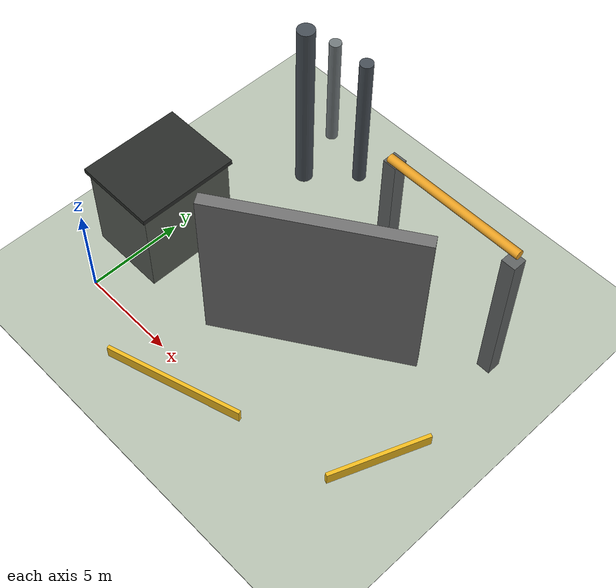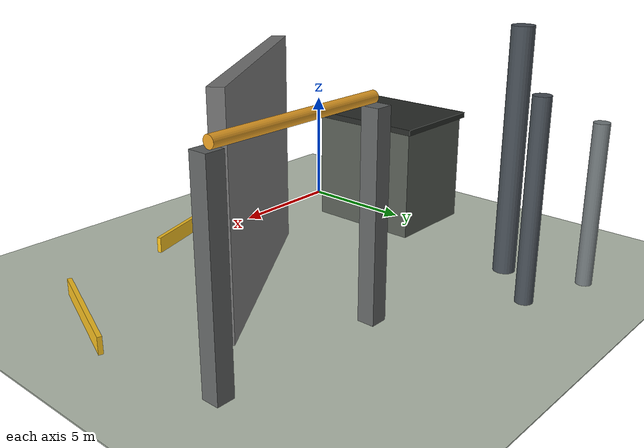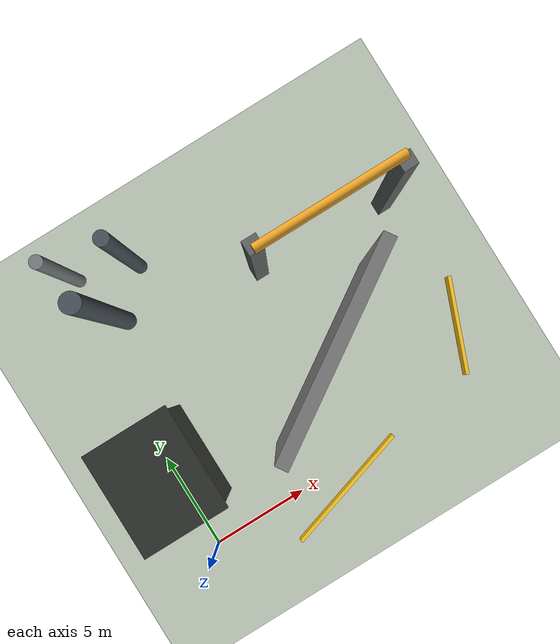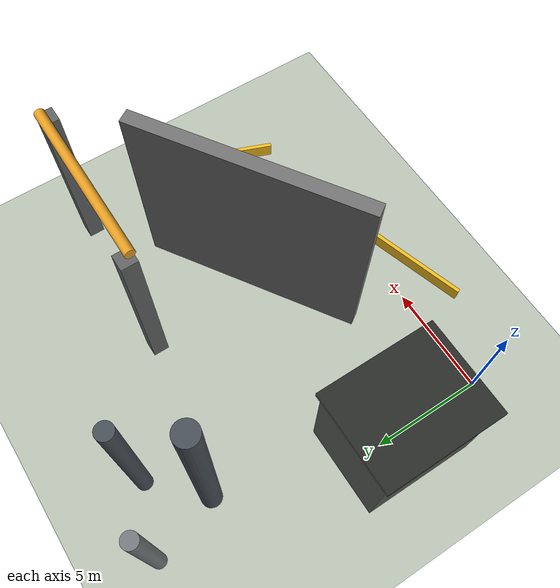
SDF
<?xml version="1.0"?>
<sdf version="1.7">
  <world name="multi_uav_reacquire">
    <physics name="default_physics" type="ignored">
      <max_step_size>0.01</max_step_size>
      <real_time_factor>1.0</real_time_factor>
    </physics>

    <plugin filename="ignition-gazebo-physics-system" name="ignition::gazebo::systems::Physics"/>
    <plugin filename="ignition-gazebo-user-commands-system" name="ignition::gazebo::systems::UserCommands"/>
    <plugin filename="ignition-gazebo-scene-broadcaster-system" name="ignition::gazebo::systems::SceneBroadcaster"/>
    <plugin filename="ignition-gazebo-sensors-system" name="ignition::gazebo::systems::Sensors">
      <render_engine>ogre2</render_engine>
    </plugin>
    <plugin filename="ignition-gazebo-imu-system" name="ignition::gazebo::systems::Imu"/>

    <light name="sun" type="directional">
      <cast_shadows>true</cast_shadows>
      <pose>0 0 20 0 0 0</pose>
      <diffuse>0.9 0.9 0.85 1</diffuse>
      <specular>0.2 0.2 0.2 1</specular>
      <direction>-0.4 0.2 -1.0</direction>
    </light>

    <model name="ground">
      <static>true</static>
      <link name="ground_link">
        <visual name="visual">
          <geometry>
            <box>
              <size>62 62 0.05</size>
            </box>
          </geometry>
          <material>
            <ambient>0.72 0.76 0.70 1</ambient>
            <diffuse>0.72 0.76 0.70 1</diffuse>
          </material>
        </visual>
        <collision name="collision">
          <geometry>
            <box>
              <size>62 62 0.05</size>
            </box>
          </geometry>
        </collision>
      </link>
    </model>

    <include>
      <name>central_wall</name>
      <uri>model://occlusion_wall</uri>
      <pose>9.5 5.25 4.5 0 0 0.58</pose>
    </include>

    <model name="pipe_gate">
      <static>true</static>
      <link name="gate_link">
        <visual name="left_column">
          <pose>9.0 10.6 4.0 0 0 0</pose>
          <geometry>
            <box>
              <size>0.7 0.7 8.0</size>
            </box>
          </geometry>
          <material>
            <ambient>0.38 0.39 0.39 1</ambient>
            <diffuse>0.38 0.39 0.39 1</diffuse>
          </material>
        </visual>
        <visual name="right_column">
          <pose>16.0 10.2 4.0 0 0 0</pose>
          <geometry>
            <box>
              <size>0.7 0.7 8.0</size>
            </box>
          </geometry>
          <material>
            <ambient>0.38 0.39 0.39 1</ambient>
            <diffuse>0.38 0.39 0.39 1</diffuse>
          </material>
        </visual>
        <visual name="top_pipe">
          <pose>12.5 10.4 8.25 0 1.5708 0</pose>
          <geometry>
            <cylinder>
              <radius>0.22</radius>
              <length>7.2</length>
            </cylinder>
          </geometry>
          <material>
            <ambient>0.9 0.62 0.14 1</ambient>
            <diffuse>0.9 0.62 0.14 1</diffuse>
          </material>
        </visual>
        <collision name="left_column_collision">
          <pose>9.0 10.6 4.0 0 0 0</pose>
          <geometry>
            <box>
              <size>0.7 0.7 8.0</size>
            </box>
          </geometry>
        </collision>
        <collision name="right_column_collision">
          <pose>16.0 10.2 4.0 0 0 0</pose>
          <geometry>
            <box>
              <size>0.7 0.7 8.0</size>
            </box>
          </geometry>
        </collision>
      </link>
    </model>

    <model name="tower_cluster">
      <static>true</static>
      <link name="tower_link">
        <visual name="tower_a">
          <pose>2.0 12.0 5.0 0 0 0</pose>
          <geometry>
            <cylinder>
              <radius>0.45</radius>
              <length>10.0</length>
            </cylinder>
          </geometry>
          <material>
            <ambient>0.28 0.31 0.34 1</ambient>
            <diffuse>0.28 0.31 0.34 1</diffuse>
          </material>
        </visual>
        <visual name="tower_b">
          <pose>4.0 14.0 4.0 0 0 0</pose>
          <geometry>
            <cylinder>
              <radius>0.35</radius>
              <length>8.0</length>
            </cylinder>
          </geometry>
          <material>
            <ambient>0.28 0.31 0.34 1</ambient>
            <diffuse>0.28 0.31 0.34 1</diffuse>
          </material>
        </visual>
        <visual name="tower_c">
          <pose>1.0 15.0 3.3 0 0 0</pose>
          <geometry>
            <cylinder>
              <radius>0.32</radius>
              <length>6.6</length>
            </cylinder>
          </geometry>
          <material>
            <ambient>0.45 0.48 0.49 1</ambient>
            <diffuse>0.45 0.48 0.49 1</diffuse>
          </material>
        </visual>
      </link>
    </model>

    <model name="factory_block">
      <static>true</static>
      <link name="factory_link">
        <visual name="main_block">
          <pose>0 4.5 2.4 0 0 0</pose>
          <geometry>
            <box>
              <size>4.0 5.0 4.8</size>
            </box>
          </geometry>
          <material>
            <ambient>0.34 0.36 0.33 1</ambient>
            <diffuse>0.34 0.36 0.33 1</diffuse>
          </material>
        </visual>
        <visual name="roof_band">
          <pose>0 4.5 4.95 0 0 0</pose>
          <geometry>
            <box>
              <size>4.3 5.3 0.25</size>
            </box>
          </geometry>
          <material>
            <ambient>0.16 0.17 0.16 1</ambient>
            <diffuse>0.16 0.17 0.16 1</diffuse>
          </material>
        </visual>
        <collision name="main_collision">
          <pose>0 4.5 2.4 0 0 0</pose>
          <geometry>
            <box>
              <size>4.0 5.0 4.8</size>
            </box>
          </geometry>
        </collision>
      </link>
    </model>

    <model name="safety_barriers">
      <static>true</static>
      <link name="barrier_link">
        <visual name="barrier_a">
          <pose>7.0 -1.0 0.35 0 0 0.3</pose>
          <geometry>
            <box>
              <size>7.0 0.18 0.7</size>
            </box>
          </geometry>
          <material>
            <ambient>0.95 0.74 0.12 1</ambient>
            <diffuse>0.95 0.74 0.12 1</diffuse>
          </material>
        </visual>
        <visual name="barrier_b">
          <pose>16.0 3.0 0.35 0 0 1.2</pose>
          <geometry>
            <box>
              <size>5.0 0.18 0.7</size>
            </box>
          </geometry>
          <material>
            <ambient>0.95 0.74 0.12 1</ambient>
            <diffuse>0.95 0.74 0.12 1</diffuse>
          </material>
        </visual>
      </link>
    </model>
  </world>
</sdf>

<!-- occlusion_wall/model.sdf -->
<sdf version="1.7">
  <model name="occlusion_wall">
    <static>true</static>
    <link name="wall">
      <visual name="visual">
        <geometry>
          <box>
            <size>10.0 0.6 9.0</size>
          </box>
        </geometry>
        <material>
          <ambient>0.45 0.45 0.45 1</ambient>
          <diffuse>0.45 0.45 0.45 1</diffuse>
        </material>
      </visual>
      <collision name="collision">
        <geometry>
          <box>
            <size>10.0 0.6 9.0</size>
          </box>
        </geometry>
      </collision>
    </link>
  </model>
</sdf>
